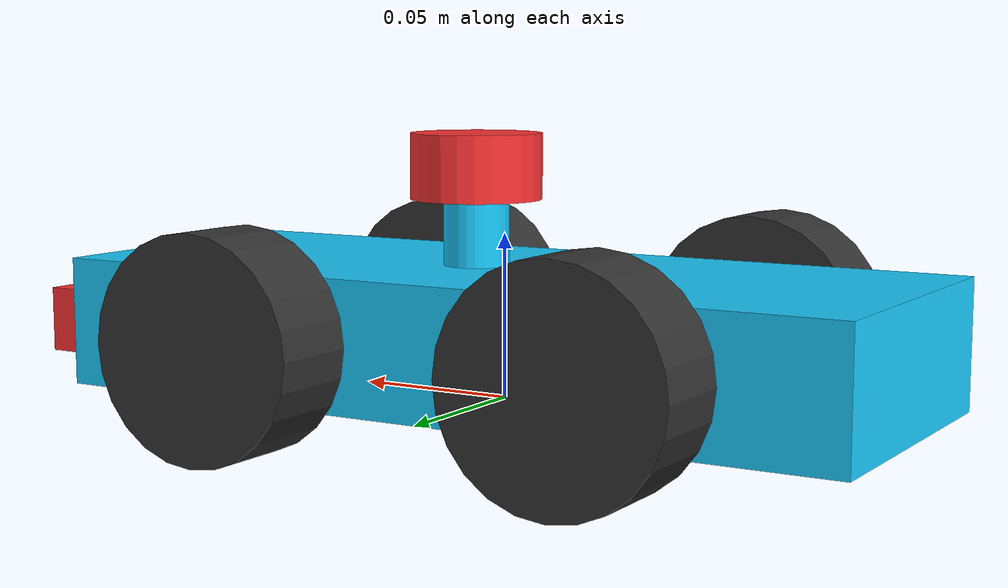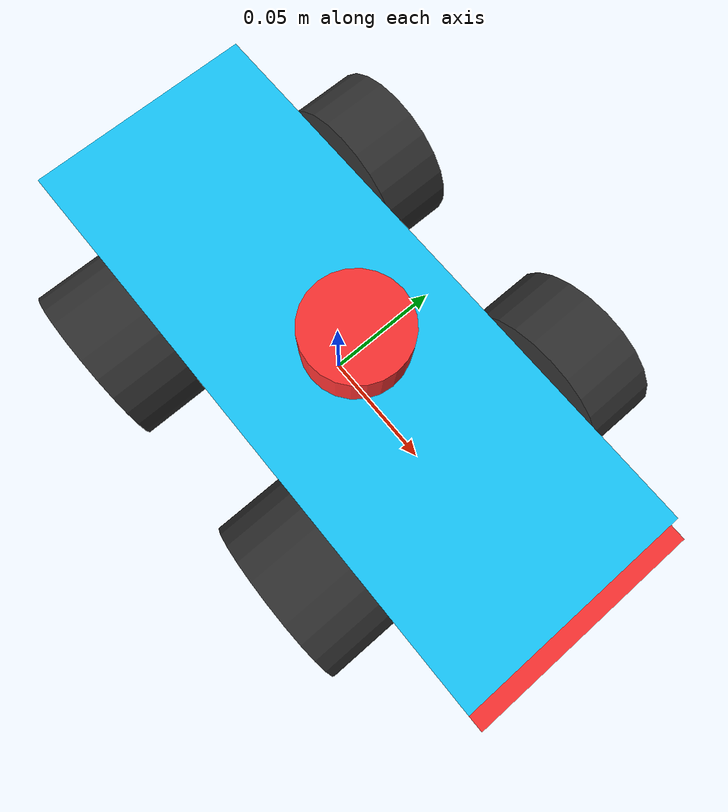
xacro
<?xml version="1.0" ?>
<robot name="alex">

	<link name="base_footprint">
		<origin xyz="0 0 0" rpy="0 0 0"/>
    </link>

    <!-- Define the chassis link -->
    <link name="base_link">
        <inertial>
            <mass value="7.416800635961257"/>
            <inertia ixx="0.03775" iyy="0.010039" izz="0.045988" ixy="1e-06" iyz="2.1e-05" ixz="-0.0"/>
        </inertial>
        <visual>
            <geometry>
                <box size="0.256 0.100 0.040"/>
            </geometry>
            <material name="blue">
                <color rgba="0.1 0.8 1.0 1.0"/>
            </material>
        </visual>
        <collision>
            <geometry>
                <box size="0.256 0.100 0.040"/>
            </geometry>
        </collision>

    </link>

    <!-- Define the front link to indicate front -->
    <link name="front_link">
        <visual>
            <geometry>
                <box size="0.01 0.100 0.020"/>
            </geometry>
            <material name="red">
                <color rgba="1.0 0.2 0.2 1.0"/>
            </material>
        </visual>
        <collision>
            <geometry>
                <box size="0.01 0.100 0.020"/>
            </geometry>
        </collision>
    </link>

    <!-- Define the wheel link -->
    <link name="front_left_wheel_link">
        <inertial>
            <mass value="0.09794643947061814"/>
            <inertia ixx="5.7e-05" iyy="3.5e-05" izz="3.5e-05" ixy="-0.0" iyz="-0.0" ixz="0.0"/>
        </inertial>

        <visual>
            <origin rpy="1.57 0 0" xyz="0 0 0" />
            <geometry>
                <cylinder length="0.028" radius="0.034"/>
            </geometry>
            <material name="black">
                <color rgba="0.2 0.2 0.2 1.0"/>
            </material>
        </visual>

        <collision>
            <origin rpy="1.57 0 0" xyz="0 0 0" />
            <geometry>
                <cylinder length="0.028" radius="0.034"/>
            </geometry>
        </collision>
    </link>

    <link name="front_right_wheel_link">
        <inertial>
            <mass value="0.0979464394706181"/>
            <inertia ixx="5.7e-05" iyy="3.5e-05" izz="3.5e-05" ixy="0.0" iyz="0.0" ixz="0.0"/>
        </inertial>
        <visual>
            <origin rpy="1.57 0 0" xyz="0 0 0" />
            <geometry>
                <cylinder length="0.028" radius="0.034"/>
            </geometry>
            <material name="black">
                <color rgba="0.2 0.2 0.2 1.0"/>
            </material>
        </visual>

        <collision>
            <origin rpy="1.57 0 0" xyz="0 0 0" />
            <geometry>
                <cylinder length="0.028" radius="0.034"/>
            </geometry>
        </collision>
    </link>

    <link name="rear_left_wheel_link">
        <inertial>
            <mass value="0.0979464394706181"/>
            <inertia ixx="5.7e-05" iyy="3.5e-05" izz="3.5e-05" ixy="0.0" iyz="0.0" ixz="0.0"/>
        </inertial>
        <visual>
            <origin rpy="1.57 0 0" xyz="0 0 0" />
            <geometry>
                <cylinder length="0.028" radius="0.034"/>
            </geometry>
            <material name="black">
                <color rgba="0.2 0.2 0.2 1.0"/>
            </material>
        </visual>

        <collision>
            <origin rpy="1.57 0 0" xyz="0 0 0" />
            <geometry>
                <cylinder length="0.028" radius="0.034"/>
            </geometry>
        </collision>
    </link>

    <link name="rear_right_wheel_link">
        <inertial>
            <mass value="0.0979464394706181"/>
            <inertia ixx="5.7e-05" iyy="3.5e-05" izz="3.5e-05" ixy="0.0" iyz="0.0" ixz="0.0"/>
        </inertial>
        <visual>
            <origin rpy="1.57 0 0" xyz="0 0 0" />
            <geometry>
                <cylinder length="0.028" radius="0.034"/>
            </geometry>
            <material name="black">
                <color rgba="0.2 0.2 0.2 1.0"/>
            </material>
        </visual>

        <collision>
            <origin rpy="1.57 0 0" xyz="0 0 0" />
            <geometry>
                <cylinder length="0.028" radius="0.034"/>
            </geometry>
        </collision>
    </link>

    <!-- Define link for lidar column-->
    <link name="laser_column_link">
        <visual>
            <geometry>
                <cylinder length="0.04" radius="0.01"/>
            </geometry>
            <material name="blue">
                <color rgba="0.1 0.8 1.0 1.0"/>
            </material>
        </visual>
    </link>

    <!-- Define link for lidar -->
    <link name="laser_link">
        <visual>
            <geometry>
                <cylinder length="0.02" radius="0.02"/>
            </geometry>
            <material name="red">
                <color rgba="1.0 0.2 0.2 1.0"/>
            </material>
        </visual>
    </link>

    <!-- Define joint for base link -->
    <joint name="base_joint" type="fixed">
        <parent link="base_footprint"/>
        <child link="base_link"/>
        <origin xyz="0 0 0.02" rpy="0 0 0"/>
    </joint>

    <joint name="front_joint" type="fixed">
        <parent link="base_link"/>
        <child link="front_link"/>
        <origin xyz="0.132 0 0" rpy="0 0 0"/>
    </joint>

    <!-- Define joint for lidar column -->
    <joint name="laser_column_joint" type="fixed">
        <parent link="base_link"/>
        <child link="laser_column_link"/>
        <origin xyz="0.01 0 0.02" rpy="0 0 0"/>
    </joint>

    <!-- Define joint for lidar -->
    <joint name="laser_joint" type="fixed">
        <parent link="laser_column_link"/>
        <child link="laser_link"/>
        <origin xyz="0 0 0.03" rpy="0 0 0"/>
    </joint>

    <!-- Define the wheel joints -->
    <joint name="rear_left_wheel_joint" type="continuous">
        <parent link="base_link"/>
        <child link="rear_left_wheel_link"/>
        <origin xyz="-0.058 0.064 0" rpy="0 0 0"/>
        <axis xyz="0 1 0"/>
        <limit effort="100" velocity="100"/>
        <dynamics damping="0.0" friction="0.0"/>
    </joint>

    <joint name="rear_right_wheel_joint" type="continuous">
        <parent link="base_link"/>
        <child link="rear_right_wheel_link"/>
        <origin xyz="-0.058 -0.064 0" rpy="0 0 0"/>
        <axis xyz="0 1 0"/>
        <limit effort="100" velocity="100"/>
        <dynamics damping="0.0" friction="0.0"/>
    </joint>

    <joint name="front_left_wheel_joint" type="continuous">
        <parent link="base_link"/>
        <child link="front_left_wheel_link"/>
        <origin xyz="0.058 0.064 0" rpy="0 0 0"/>
        <axis xyz="0 1 0"/>
        <limit effort="100" velocity="100"/>
        <dynamics damping="0.0" friction="0.0"/>
    </joint>

    <joint name="front_right_wheel_joint" type="continuous">
        <parent link="base_link"/>
        <child link="front_right_wheel_link"/>
        <origin xyz="0.058 -0.064 0" rpy="0 0 0"/>
        <axis xyz="0 1 0"/>
        <limit effort="100" velocity="100"/>
        <dynamics damping="0.0" friction="0.0"/>
    </joint>

    <!-- Wheel Transmissions -->
    <transmission name="front_left_wheel_trans">
        <type>transmission_interface/SimpleTransmission</type>
        <actuator name="front_left_wheel_motor">
            <hardwareInterface>EffortJointInterface</hardwareInterface>
            <mechanicalReduction>1</mechanicalReduction>
        </actuator>
        <joint name="front_left_wheel_joint">
            <hardwareInterface>VelocityJointInterface</hardwareInterface>
        </joint>
    </transmission>

    <transmission name="front_right_wheel_trans">
        <type>transmission_interface/SimpleTransmission</type>
        <actuator name="front_right_wheel_motor">
            <hardwareInterface>EffortJointInterface</hardwareInterface>
            <mechanicalReduction>1</mechanicalReduction>
        </actuator>
        <joint name="front_right_wheel_joint">
            <hardwareInterface>VelocityJointInterface</hardwareInterface>
        </joint>
    </transmission>

    <transmission name="rear_left_wheel_trans">
        <type>transmission_interface/SimpleTransmission</type>
        <actuator name="rear_left_wheel_motor">
            <hardwareInterface>EffortJointInterface</hardwareInterface>
            <mechanicalReduction>1</mechanicalReduction>
        </actuator>
        <joint name="rear_left_wheel_joint">
            <hardwareInterface>VelocityJointInterface</hardwareInterface>
        </joint>
    </transmission>

    <transmission name="rear_right_wheel_trans">
        <type>transmission_interface/SimpleTransmission</type>
        <actuator name="rear_right_wheel_motor">
            <hardwareInterface>EffortJointInterface</hardwareInterface>
            <mechanicalReduction>1</mechanicalReduction>
        </actuator>
        <joint name="rear_right_wheel_joint">
            <hardwareInterface>VelocityJointInterface</hardwareInterface>
        </joint>
    </transmission>

    <!-- ros_control plugin -->
    <gazebo>
        <plugin name="gazebo_ros_control" filename="libgazebo_ros_control.so">
        <robotNamespace>/</robotNamespace>
        </plugin>
    </gazebo>
</robot>
